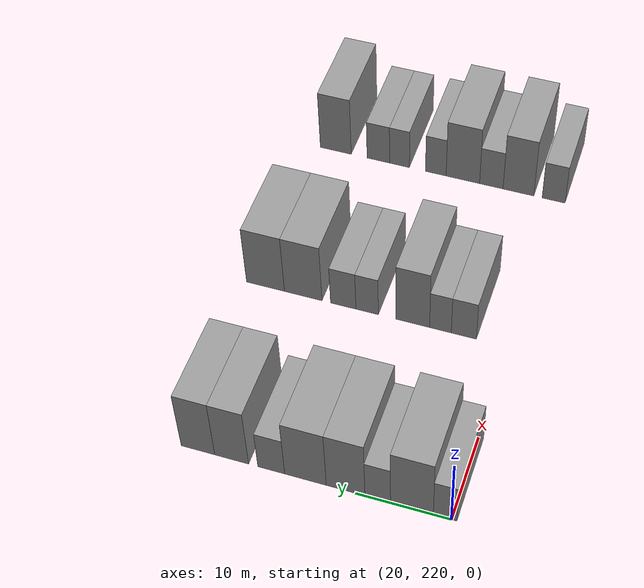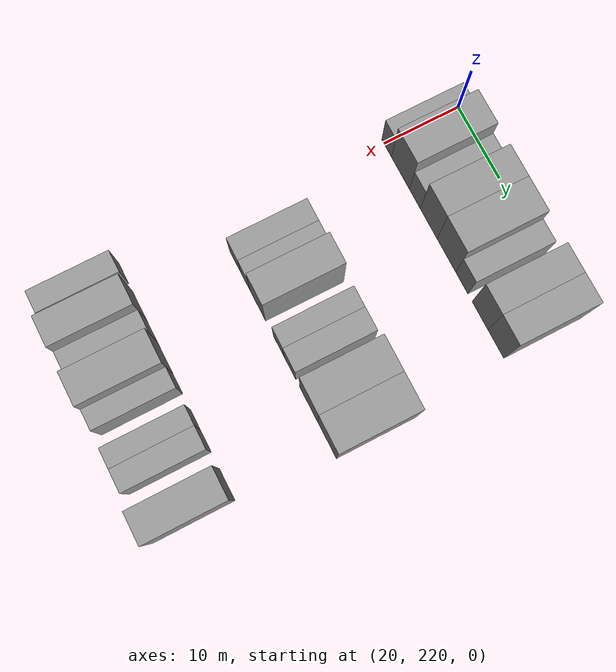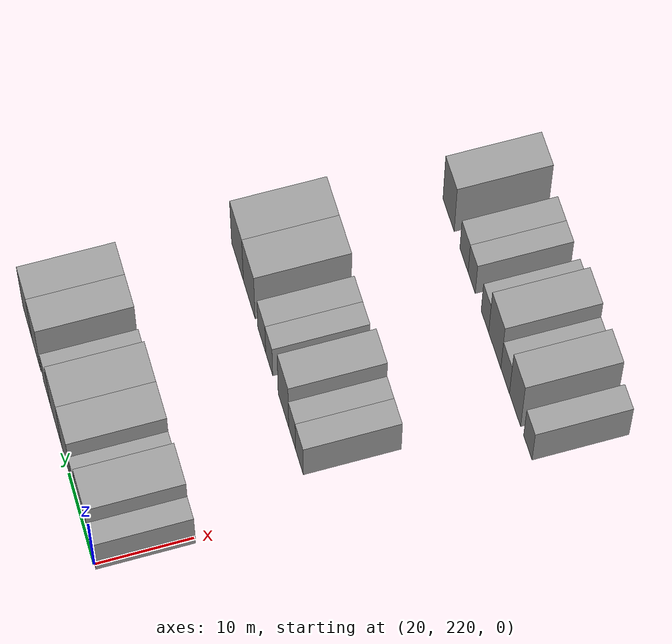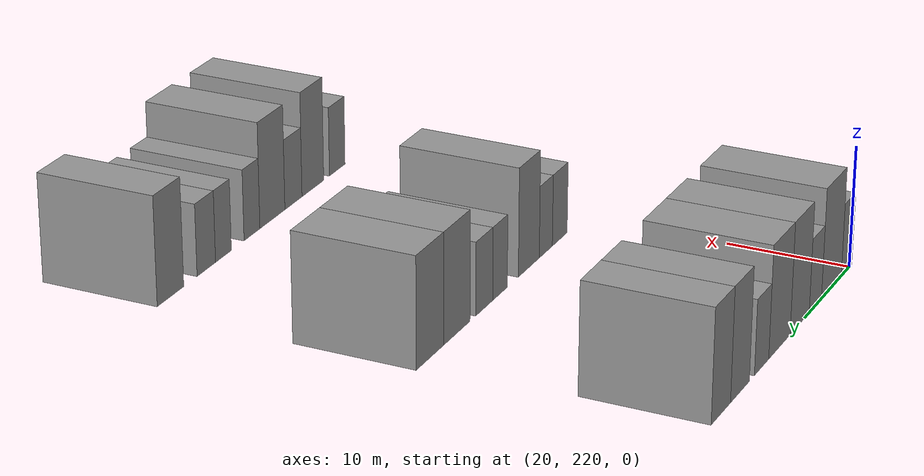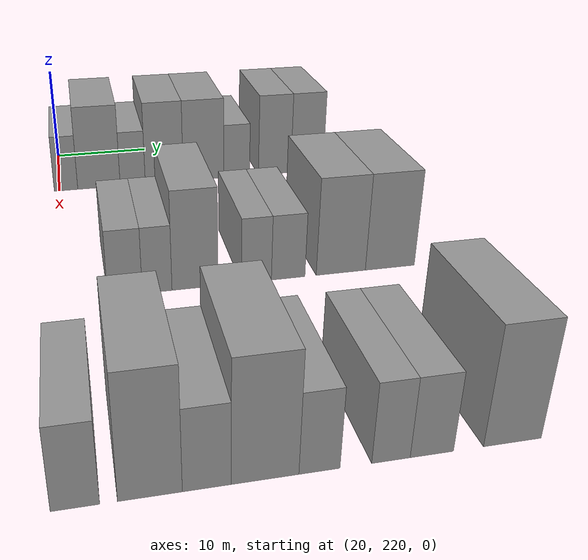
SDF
<sdf version="1.6">
 <world name="default">
  <model name="building_117">
   <static>1</static>
   <pose>25.0000 220.6739 0 0.000000 0.000000 0.000000</pose>
   <link name="link">
    <pose>0 0 3.00 0 0 0</pose>
    <collision name="collision"><geometry><box><size>10.0000 2.4268 6.0000</size></box></geometry></collision>
    <visual name="visual">
     <cast_shadows>0</cast_shadows>
     <geometry><box><size>10.0000 2.4268 6.0000</size></box></geometry>
     <material>
      <script>
       <uri>model://grey_wall/materials/scripts</uri>
       <uri>model://grey_wall/materials/textures</uri>
       <name>vrc/grey_wall</name>
      </script>
     </material>
    </visual>
   </link>
  </model>
  <model name="building_118">
   <static>1</static>
   <pose>25.0000 224.1111 0 0.000000 0.000000 0.000000</pose>
   <link name="link">
    <pose>0 0 4.50 0 0 0</pose>
    <collision name="collision"><geometry><box><size>10.0000 4.4477 9.0000</size></box></geometry></collision>
    <visual name="visual">
     <cast_shadows>0</cast_shadows>
     <geometry><box><size>10.0000 4.4477 9.0000</size></box></geometry>
     <material>
      <script>
       <uri>model://grey_wall/materials/scripts</uri>
       <uri>model://grey_wall/materials/textures</uri>
       <name>vrc/grey_wall</name>
      </script>
     </material>
    </visual>
   </link>
  </model>
  <model name="building_119">
   <static>1</static>
   <pose>25.0000 227.6734 0 0.000000 0.000000 0.000000</pose>
   <link name="link">
    <pose>0 0 3.00 0 0 0</pose>
    <collision name="collision"><geometry><box><size>10.0000 2.6770 6.0000</size></box></geometry></collision>
    <visual name="visual">
     <cast_shadows>0</cast_shadows>
     <geometry><box><size>10.0000 2.6770 6.0000</size></box></geometry>
     <material>
      <script>
       <uri>model://grey_wall/materials/scripts</uri>
       <uri>model://grey_wall/materials/textures</uri>
       <name>vrc/grey_wall</name>
      </script>
     </material>
    </visual>
   </link>
  </model>
  <model name="building_120">
   <static>1</static>
   <pose>25.0000 231.0528 0 0.000000 0.000000 0.000000</pose>
   <link name="link">
    <pose>0 0 4.50 0 0 0</pose>
    <collision name="collision"><geometry><box><size>10.0000 4.0817 9.0000</size></box></geometry></collision>
    <visual name="visual">
     <cast_shadows>0</cast_shadows>
     <geometry><box><size>10.0000 4.0817 9.0000</size></box></geometry>
     <material>
      <script>
       <uri>model://grey_wall/materials/scripts</uri>
       <uri>model://grey_wall/materials/textures</uri>
       <name>vrc/grey_wall</name>
      </script>
     </material>
    </visual>
   </link>
  </model>
  <model name="building_121">
   <static>1</static>
   <pose>25.0000 235.3153 0 0.000000 0.000000 0.000000</pose>
   <link name="link">
    <pose>0 0 4.50 0 0 0</pose>
    <collision name="collision"><geometry><box><size>10.0000 4.4433 9.0000</size></box></geometry></collision>
    <visual name="visual">
     <cast_shadows>0</cast_shadows>
     <geometry><box><size>10.0000 4.4433 9.0000</size></box></geometry>
     <material>
      <script>
       <uri>model://grey_wall/materials/scripts</uri>
       <uri>model://grey_wall/materials/textures</uri>
       <name>vrc/grey_wall</name>
      </script>
     </material>
    </visual>
   </link>
  </model>
  <model name="building_122">
   <static>1</static>
   <pose>25.0000 238.9816 0 0.000000 0.000000 0.000000</pose>
   <link name="link">
    <pose>0 0 3.00 0 0 0</pose>
    <collision name="collision"><geometry><box><size>10.0000 2.8893 6.0000</size></box></geometry></collision>
    <visual name="visual">
     <cast_shadows>0</cast_shadows>
     <geometry><box><size>10.0000 2.8893 6.0000</size></box></geometry>
     <material>
      <script>
       <uri>model://grey_wall/materials/scripts</uri>
       <uri>model://grey_wall/materials/textures</uri>
       <name>vrc/grey_wall</name>
      </script>
     </material>
    </visual>
   </link>
  </model>
  <model name="building_123">
   <static>1</static>
   <pose>25.0000 243.2667 0 0.000000 0.000000 0.000000</pose>
   <link name="link">
    <pose>0 0 4.50 0 0 0</pose>
    <collision name="collision"><geometry><box><size>10.0000 3.6809 9.0000</size></box></geometry></collision>
    <visual name="visual">
     <cast_shadows>0</cast_shadows>
     <geometry><box><size>10.0000 3.6809 9.0000</size></box></geometry>
     <material>
      <script>
       <uri>model://grey_wall/materials/scripts</uri>
       <uri>model://grey_wall/materials/textures</uri>
       <name>vrc/grey_wall</name>
      </script>
     </material>
    </visual>
   </link>
  </model>
  <model name="building_124">
   <static>1</static>
   <pose>25.0000 246.9522 0 0.000000 0.000000 0.000000</pose>
   <link name="link">
    <pose>0 0 4.50 0 0 0</pose>
    <collision name="collision"><geometry><box><size>10.0000 3.6901 9.0000</size></box></geometry></collision>
    <visual name="visual">
     <cast_shadows>0</cast_shadows>
     <geometry><box><size>10.0000 3.6901 9.0000</size></box></geometry>
     <material>
      <script>
       <uri>model://grey_wall/materials/scripts</uri>
       <uri>model://grey_wall/materials/textures</uri>
       <name>vrc/grey_wall</name>
      </script>
     </material>
    </visual>
   </link>
  </model>
  <model name="building_238">
   <static>1</static>
   <pose>47.0000 224.9446 0 0.000000 0.000000 0.000000</pose>
   <link name="link">
    <pose>0 0 3.00 0 0 0</pose>
    <collision name="collision"><geometry><box><size>10.0000 2.8341 6.0000</size></box></geometry></collision>
    <visual name="visual">
     <cast_shadows>0</cast_shadows>
     <geometry><box><size>10.0000 2.8341 6.0000</size></box></geometry>
     <material>
      <script>
       <uri>model://grey_wall/materials/scripts</uri>
       <uri>model://grey_wall/materials/textures</uri>
       <name>vrc/grey_wall</name>
      </script>
     </material>
    </visual>
   </link>
  </model>
  <model name="building_239">
   <static>1</static>
   <pose>47.0000 227.5889 0 0.000000 0.000000 0.000000</pose>
   <link name="link">
    <pose>0 0 3.00 0 0 0</pose>
    <collision name="collision"><geometry><box><size>10.0000 2.4545 6.0000</size></box></geometry></collision>
    <visual name="visual">
     <cast_shadows>0</cast_shadows>
     <geometry><box><size>10.0000 2.4545 6.0000</size></box></geometry>
     <material>
      <script>
       <uri>model://grey_wall/materials/scripts</uri>
       <uri>model://grey_wall/materials/textures</uri>
       <name>vrc/grey_wall</name>
      </script>
     </material>
    </visual>
   </link>
  </model>
  <model name="building_240">
   <static>1</static>
   <pose>47.0000 230.7404 0 0.000000 0.000000 0.000000</pose>
   <link name="link">
    <pose>0 0 4.50 0 0 0</pose>
    <collision name="collision"><geometry><box><size>10.0000 3.8484 9.0000</size></box></geometry></collision>
    <visual name="visual">
     <cast_shadows>0</cast_shadows>
     <geometry><box><size>10.0000 3.8484 9.0000</size></box></geometry>
     <material>
      <script>
       <uri>model://grey_wall/materials/scripts</uri>
       <uri>model://grey_wall/materials/textures</uri>
       <name>vrc/grey_wall</name>
      </script>
     </material>
    </visual>
   </link>
  </model>
  <model name="building_241">
   <static>1</static>
   <pose>47.0000 235.9636 0 0.000000 0.000000 0.000000</pose>
   <link name="link">
    <pose>0 0 3.00 0 0 0</pose>
    <collision name="collision"><geometry><box><size>10.0000 2.5980 6.0000</size></box></geometry></collision>
    <visual name="visual">
     <cast_shadows>0</cast_shadows>
     <geometry><box><size>10.0000 2.5980 6.0000</size></box></geometry>
     <material>
      <script>
       <uri>model://grey_wall/materials/scripts</uri>
       <uri>model://grey_wall/materials/textures</uri>
       <name>vrc/grey_wall</name>
      </script>
     </material>
    </visual>
   </link>
  </model>
  <model name="building_242">
   <static>1</static>
   <pose>47.0000 238.7320 0 0.000000 0.000000 0.000000</pose>
   <link name="link">
    <pose>0 0 3.00 0 0 0</pose>
    <collision name="collision"><geometry><box><size>10.0000 2.9387 6.0000</size></box></geometry></collision>
    <visual name="visual">
     <cast_shadows>0</cast_shadows>
     <geometry><box><size>10.0000 2.9387 6.0000</size></box></geometry>
     <material>
      <script>
       <uri>model://grey_wall/materials/scripts</uri>
       <uri>model://grey_wall/materials/textures</uri>
       <name>vrc/grey_wall</name>
      </script>
     </material>
    </visual>
   </link>
  </model>
  <model name="building_243">
   <static>1</static>
   <pose>47.0000 243.4072 0 0.000000 0.000000 0.000000</pose>
   <link name="link">
    <pose>0 0 4.50 0 0 0</pose>
    <collision name="collision"><geometry><box><size>10.0000 4.4118 9.0000</size></box></geometry></collision>
    <visual name="visual">
     <cast_shadows>0</cast_shadows>
     <geometry><box><size>10.0000 4.4118 9.0000</size></box></geometry>
     <material>
      <script>
       <uri>model://grey_wall/materials/scripts</uri>
       <uri>model://grey_wall/materials/textures</uri>
       <name>vrc/grey_wall</name>
      </script>
     </material>
    </visual>
   </link>
  </model>
  <model name="building_244">
   <static>1</static>
   <pose>47.0000 247.8577 0 0.000000 0.000000 0.000000</pose>
   <link name="link">
    <pose>0 0 4.50 0 0 0</pose>
    <collision name="collision"><geometry><box><size>10.0000 4.4893 9.0000</size></box></geometry></collision>
    <visual name="visual">
     <cast_shadows>0</cast_shadows>
     <geometry><box><size>10.0000 4.4893 9.0000</size></box></geometry>
     <material>
      <script>
       <uri>model://grey_wall/materials/scripts</uri>
       <uri>model://grey_wall/materials/textures</uri>
       <name>vrc/grey_wall</name>
      </script>
     </material>
    </visual>
   </link>
  </model>
  <model name="building_357">
   <static>1</static>
   <pose>69.0000 220.2481 0 0.000000 0.000000 0.000000</pose>
   <link name="link">
    <pose>0 0 3.00 0 0 0</pose>
    <collision name="collision"><geometry><box><size>10.0000 2.7521 6.0000</size></box></geometry></collision>
    <visual name="visual">
     <cast_shadows>0</cast_shadows>
     <geometry><box><size>10.0000 2.7521 6.0000</size></box></geometry>
     <material>
      <script>
       <uri>model://grey_wall/materials/scripts</uri>
       <uri>model://grey_wall/materials/textures</uri>
       <name>vrc/grey_wall</name>
      </script>
     </material>
    </visual>
   </link>
  </model>
  <model name="building_358">
   <static>1</static>
   <pose>69.0000 224.4849 0 0.000000 0.000000 0.000000</pose>
   <link name="link">
    <pose>0 0 4.50 0 0 0</pose>
    <collision name="collision"><geometry><box><size>10.0000 3.7217 9.0000</size></box></geometry></collision>
    <visual name="visual">
     <cast_shadows>0</cast_shadows>
     <geometry><box><size>10.0000 3.7217 9.0000</size></box></geometry>
     <material>
      <script>
       <uri>model://grey_wall/materials/scripts</uri>
       <uri>model://grey_wall/materials/textures</uri>
       <name>vrc/grey_wall</name>
      </script>
     </material>
    </visual>
   </link>
  </model>
  <model name="building_359">
   <static>1</static>
   <pose>69.0000 227.7780 0 0.000000 0.000000 0.000000</pose>
   <link name="link">
    <pose>0 0 3.00 0 0 0</pose>
    <collision name="collision"><geometry><box><size>10.0000 2.8644 6.0000</size></box></geometry></collision>
    <visual name="visual">
     <cast_shadows>0</cast_shadows>
     <geometry><box><size>10.0000 2.8644 6.0000</size></box></geometry>
     <material>
      <script>
       <uri>model://grey_wall/materials/scripts</uri>
       <uri>model://grey_wall/materials/textures</uri>
       <name>vrc/grey_wall</name>
      </script>
     </material>
    </visual>
   </link>
  </model>
  <model name="building_360">
   <static>1</static>
   <pose>69.0000 231.2612 0 0.000000 0.000000 0.000000</pose>
   <link name="link">
    <pose>0 0 4.50 0 0 0</pose>
    <collision name="collision"><geometry><box><size>10.0000 4.1020 9.0000</size></box></geometry></collision>
    <visual name="visual">
     <cast_shadows>0</cast_shadows>
     <geometry><box><size>10.0000 4.1020 9.0000</size></box></geometry>
     <material>
      <script>
       <uri>model://grey_wall/materials/scripts</uri>
       <uri>model://grey_wall/materials/textures</uri>
       <name>vrc/grey_wall</name>
      </script>
     </material>
    </visual>
   </link>
  </model>
  <model name="building_361">
   <static>1</static>
   <pose>69.0000 234.5837 0 0.000000 0.000000 0.000000</pose>
   <link name="link">
    <pose>0 0 3.00 0 0 0</pose>
    <collision name="collision"><geometry><box><size>10.0000 2.5430 6.0000</size></box></geometry></collision>
    <visual name="visual">
     <cast_shadows>0</cast_shadows>
     <geometry><box><size>10.0000 2.5430 6.0000</size></box></geometry>
     <material>
      <script>
       <uri>model://grey_wall/materials/scripts</uri>
       <uri>model://grey_wall/materials/textures</uri>
       <name>vrc/grey_wall</name>
      </script>
     </material>
    </visual>
   </link>
  </model>
  <model name="building_362">
   <static>1</static>
   <pose>69.0000 239.0878 0 0.000000 0.000000 0.000000</pose>
   <link name="link">
    <pose>0 0 3.00 0 0 0</pose>
    <collision name="collision"><geometry><box><size>10.0000 2.4651 6.0000</size></box></geometry></collision>
    <visual name="visual">
     <cast_shadows>0</cast_shadows>
     <geometry><box><size>10.0000 2.4651 6.0000</size></box></geometry>
     <material>
      <script>
       <uri>model://grey_wall/materials/scripts</uri>
       <uri>model://grey_wall/materials/textures</uri>
       <name>vrc/grey_wall</name>
      </script>
     </material>
    </visual>
   </link>
  </model>
  <model name="building_363">
   <static>1</static>
   <pose>69.0000 241.7337 0 0.000000 0.000000 0.000000</pose>
   <link name="link">
    <pose>0 0 3.00 0 0 0</pose>
    <collision name="collision"><geometry><box><size>10.0000 2.8267 6.0000</size></box></geometry></collision>
    <visual name="visual">
     <cast_shadows>0</cast_shadows>
     <geometry><box><size>10.0000 2.8267 6.0000</size></box></geometry>
     <material>
      <script>
       <uri>model://grey_wall/materials/scripts</uri>
       <uri>model://grey_wall/materials/textures</uri>
       <name>vrc/grey_wall</name>
      </script>
     </material>
    </visual>
   </link>
  </model>
  <model name="building_364">
   <static>1</static>
   <pose>69.0000 247.1022 0 0.000000 0.000000 0.000000</pose>
   <link name="link">
    <pose>0 0 4.50 0 0 0</pose>
    <collision name="collision"><geometry><box><size>10.0000 3.9105 9.0000</size></box></geometry></collision>
    <visual name="visual">
     <cast_shadows>0</cast_shadows>
     <geometry><box><size>10.0000 3.9105 9.0000</size></box></geometry>
     <material>
      <script>
       <uri>model://grey_wall/materials/scripts</uri>
       <uri>model://grey_wall/materials/textures</uri>
       <name>vrc/grey_wall</name>
      </script>
     </material>
    </visual>
   </link>
  </model>
 </world>
</sdf>
